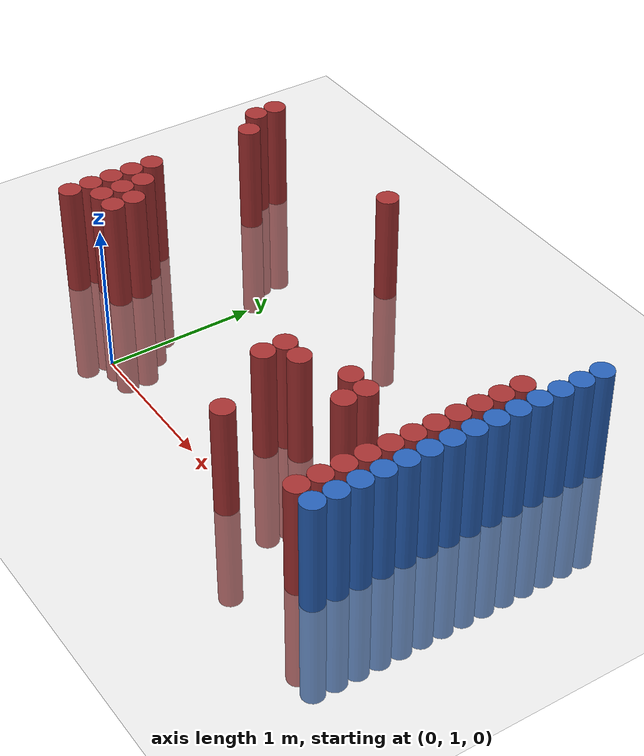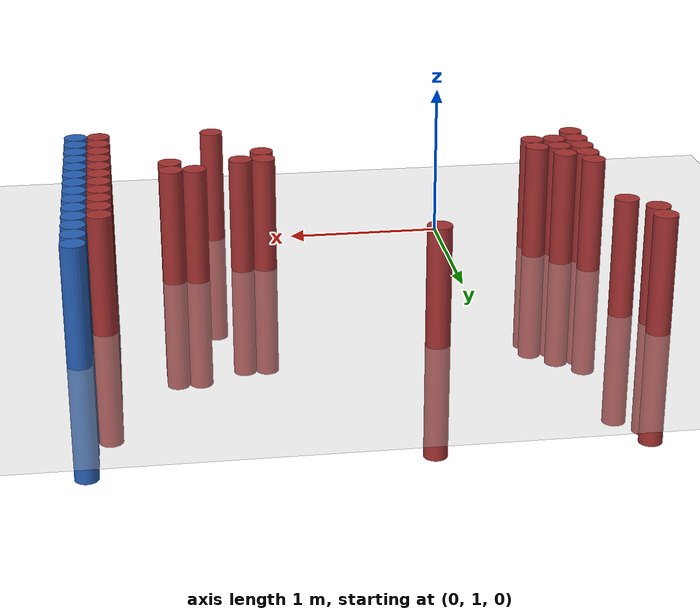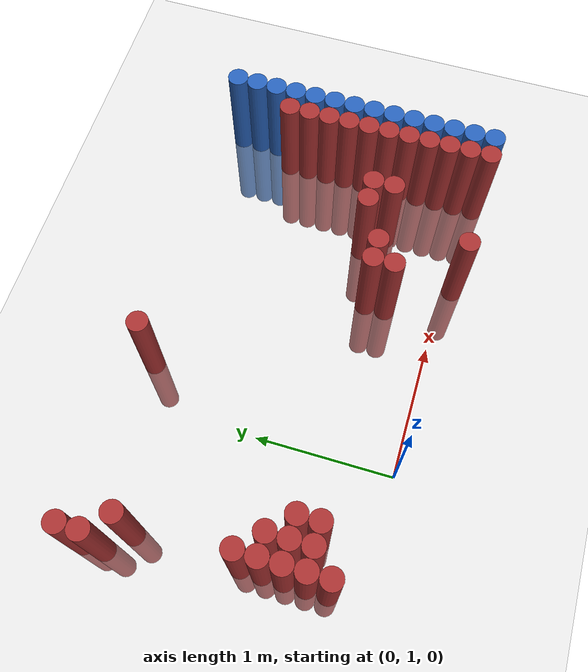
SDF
<sdf version="1.6">
 <world name="default">
  <model name="ground_plane">
   <static>1</static>
   <link name="link">
    <collision name="collision">
     <geometry><plane><normal>0 0 1</normal><size>100 100</size></plane></geometry>
     <surface><friction><ode><mu>100</mu><mu2>50</mu2></ode></friction></surface>
    </collision>
    <visual name="visual">
     <cast_shadows>0</cast_shadows>
     <geometry><plane><normal>0 0 1</normal><size>100 100</size></plane></geometry>
     <material>
      <script><uri>file://media/materials/scripts/gazebo.material</uri><name>Gazebo/Grey</name></script>
     </material>
    </visual>
   </link>
  </model>
  <model name="unit_cylinder_159">
   <static>1</static>
   <pose>-1.025000 2.725000 0.000000 0.000000 0.000000 0.000000</pose>
   <link name="link">
    <inertial>
     <mass>1</mass>
     <inertia><ixx>0.145833</ixx><ixy>0</ixy><ixz>0</ixz><iyy>0.145833</iyy><iyz>0</iyz><izz>0.125</izz></inertia>
    </inertial>
    <collision name="collision">
     <geometry><cylinder><radius>0.075000</radius><length>1.5</length></cylinder></geometry>
    </collision>
    <visual name="visual">
     <geometry><cylinder><radius>0.075000</radius><length>1.5</length></cylinder></geometry>
     <material>
      <ambient>0.648000 0.192000 0.192000 1</ambient>
      <diffuse>0.648000 0.192000 0.192000 1</diffuse>
     </material>
     <material>
      <script><name>Gazebo/Grey</name><uri>file://media/materials/scripts/gazebo.material</uri></script>
     </material>
    </visual>
   </link>
  </model>
  <model name="unit_cylinder_160">
   <static>1</static>
   <pose>-1.025000 2.875000 0.000000 0.000000 0.000000 0.000000</pose>
   <link name="link">
    <inertial>
     <mass>1</mass>
     <inertia><ixx>0.145833</ixx><ixy>0</ixy><ixz>0</ixz><iyy>0.145833</iyy><iyz>0</iyz><izz>0.125</izz></inertia>
    </inertial>
    <collision name="collision">
     <geometry><cylinder><radius>0.075000</radius><length>1.5</length></cylinder></geometry>
    </collision>
    <visual name="visual">
     <geometry><cylinder><radius>0.075000</radius><length>1.5</length></cylinder></geometry>
     <material>
      <ambient>0.648000 0.192000 0.192000 1</ambient>
      <diffuse>0.648000 0.192000 0.192000 1</diffuse>
     </material>
     <material>
      <script><name>Gazebo/Grey</name><uri>file://media/materials/scripts/gazebo.material</uri></script>
     </material>
    </visual>
   </link>
  </model>
  <model name="unit_cylinder_163">
   <static>1</static>
   <pose>-0.875000 1.225000 0.000000 0.000000 0.000000 0.000000</pose>
   <link name="link">
    <inertial>
     <mass>1</mass>
     <inertia><ixx>0.145833</ixx><ixy>0</ixy><ixz>0</ixz><iyy>0.145833</iyy><iyz>0</iyz><izz>0.125</izz></inertia>
    </inertial>
    <collision name="collision">
     <geometry><cylinder><radius>0.075000</radius><length>1.5</length></cylinder></geometry>
    </collision>
    <visual name="visual">
     <geometry><cylinder><radius>0.075000</radius><length>1.5</length></cylinder></geometry>
     <material>
      <ambient>0.648000 0.192000 0.192000 1</ambient>
      <diffuse>0.648000 0.192000 0.192000 1</diffuse>
     </material>
     <material>
      <script><name>Gazebo/Grey</name><uri>file://media/materials/scripts/gazebo.material</uri></script>
     </material>
    </visual>
   </link>
  </model>
  <model name="unit_cylinder_164">
   <static>1</static>
   <pose>-0.875000 1.375000 0.000000 0.000000 0.000000 0.000000</pose>
   <link name="link">
    <inertial>
     <mass>1</mass>
     <inertia><ixx>0.145833</ixx><ixy>0</ixy><ixz>0</ixz><iyy>0.145833</iyy><iyz>0</iyz><izz>0.125</izz></inertia>
    </inertial>
    <collision name="collision">
     <geometry><cylinder><radius>0.075000</radius><length>1.5</length></cylinder></geometry>
    </collision>
    <visual name="visual">
     <geometry><cylinder><radius>0.075000</radius><length>1.5</length></cylinder></geometry>
     <material>
      <ambient>0.648000 0.192000 0.192000 1</ambient>
      <diffuse>0.648000 0.192000 0.192000 1</diffuse>
     </material>
     <material>
      <script><name>Gazebo/Grey</name><uri>file://media/materials/scripts/gazebo.material</uri></script>
     </material>
    </visual>
   </link>
  </model>
  <model name="unit_cylinder_165">
   <static>1</static>
   <pose>-0.875000 1.525000 0.000000 0.000000 0.000000 0.000000</pose>
   <link name="link">
    <inertial>
     <mass>1</mass>
     <inertia><ixx>0.145833</ixx><ixy>0</ixy><ixz>0</ixz><iyy>0.145833</iyy><iyz>0</iyz><izz>0.125</izz></inertia>
    </inertial>
    <collision name="collision">
     <geometry><cylinder><radius>0.075000</radius><length>1.5</length></cylinder></geometry>
    </collision>
    <visual name="visual">
     <geometry><cylinder><radius>0.075000</radius><length>1.5</length></cylinder></geometry>
     <material>
      <ambient>0.648000 0.192000 0.192000 1</ambient>
      <diffuse>0.648000 0.192000 0.192000 1</diffuse>
     </material>
     <material>
      <script><name>Gazebo/Grey</name><uri>file://media/materials/scripts/gazebo.material</uri></script>
     </material>
    </visual>
   </link>
  </model>
  <model name="unit_cylinder_166">
   <static>1</static>
   <pose>-0.875000 1.675000 0.000000 0.000000 0.000000 0.000000</pose>
   <link name="link">
    <inertial>
     <mass>1</mass>
     <inertia><ixx>0.145833</ixx><ixy>0</ixy><ixz>0</ixz><iyy>0.145833</iyy><iyz>0</iyz><izz>0.125</izz></inertia>
    </inertial>
    <collision name="collision">
     <geometry><cylinder><radius>0.075000</radius><length>1.5</length></cylinder></geometry>
    </collision>
    <visual name="visual">
     <geometry><cylinder><radius>0.075000</radius><length>1.5</length></cylinder></geometry>
     <material>
      <ambient>0.648000 0.192000 0.192000 1</ambient>
      <diffuse>0.648000 0.192000 0.192000 1</diffuse>
     </material>
     <material>
      <script><name>Gazebo/Grey</name><uri>file://media/materials/scripts/gazebo.material</uri></script>
     </material>
    </visual>
   </link>
  </model>
  <model name="unit_cylinder_167">
   <static>1</static>
   <pose>-0.875000 1.825000 0.000000 0.000000 0.000000 0.000000</pose>
   <link name="link">
    <inertial>
     <mass>1</mass>
     <inertia><ixx>0.145833</ixx><ixy>0</ixy><ixz>0</ixz><iyy>0.145833</iyy><iyz>0</iyz><izz>0.125</izz></inertia>
    </inertial>
    <collision name="collision">
     <geometry><cylinder><radius>0.075000</radius><length>1.5</length></cylinder></geometry>
    </collision>
    <visual name="visual">
     <geometry><cylinder><radius>0.075000</radius><length>1.5</length></cylinder></geometry>
     <material>
      <ambient>0.648000 0.192000 0.192000 1</ambient>
      <diffuse>0.648000 0.192000 0.192000 1</diffuse>
     </material>
     <material>
      <script><name>Gazebo/Grey</name><uri>file://media/materials/scripts/gazebo.material</uri></script>
     </material>
    </visual>
   </link>
  </model>
  <model name="unit_cylinder_168">
   <static>1</static>
   <pose>-0.875000 2.575000 0.000000 0.000000 0.000000 0.000000</pose>
   <link name="link">
    <inertial>
     <mass>1</mass>
     <inertia><ixx>0.145833</ixx><ixy>0</ixy><ixz>0</ixz><iyy>0.145833</iyy><iyz>0</iyz><izz>0.125</izz></inertia>
    </inertial>
    <collision name="collision">
     <geometry><cylinder><radius>0.075000</radius><length>1.5</length></cylinder></geometry>
    </collision>
    <visual name="visual">
     <geometry><cylinder><radius>0.075000</radius><length>1.5</length></cylinder></geometry>
     <material>
      <ambient>0.648000 0.192000 0.192000 1</ambient>
      <diffuse>0.648000 0.192000 0.192000 1</diffuse>
     </material>
     <material>
      <script><name>Gazebo/Grey</name><uri>file://media/materials/scripts/gazebo.material</uri></script>
     </material>
    </visual>
   </link>
  </model>
  <model name="unit_cylinder_170">
   <static>1</static>
   <pose>-0.725000 1.375000 0.000000 0.000000 0.000000 0.000000</pose>
   <link name="link">
    <inertial>
     <mass>1</mass>
     <inertia><ixx>0.145833</ixx><ixy>0</ixy><ixz>0</ixz><iyy>0.145833</iyy><iyz>0</iyz><izz>0.125</izz></inertia>
    </inertial>
    <collision name="collision">
     <geometry><cylinder><radius>0.075000</radius><length>1.5</length></cylinder></geometry>
    </collision>
    <visual name="visual">
     <geometry><cylinder><radius>0.075000</radius><length>1.5</length></cylinder></geometry>
     <material>
      <ambient>0.648000 0.192000 0.192000 1</ambient>
      <diffuse>0.648000 0.192000 0.192000 1</diffuse>
     </material>
     <material>
      <script><name>Gazebo/Grey</name><uri>file://media/materials/scripts/gazebo.material</uri></script>
     </material>
    </visual>
   </link>
  </model>
  <model name="unit_cylinder_171">
   <static>1</static>
   <pose>-0.725000 1.525000 0.000000 0.000000 0.000000 0.000000</pose>
   <link name="link">
    <inertial>
     <mass>1</mass>
     <inertia><ixx>0.145833</ixx><ixy>0</ixy><ixz>0</ixz><iyy>0.145833</iyy><iyz>0</iyz><izz>0.125</izz></inertia>
    </inertial>
    <collision name="collision">
     <geometry><cylinder><radius>0.075000</radius><length>1.5</length></cylinder></geometry>
    </collision>
    <visual name="visual">
     <geometry><cylinder><radius>0.075000</radius><length>1.5</length></cylinder></geometry>
     <material>
      <ambient>0.648000 0.192000 0.192000 1</ambient>
      <diffuse>0.648000 0.192000 0.192000 1</diffuse>
     </material>
     <material>
      <script><name>Gazebo/Grey</name><uri>file://media/materials/scripts/gazebo.material</uri></script>
     </material>
    </visual>
   </link>
  </model>
  <model name="unit_cylinder_172">
   <static>1</static>
   <pose>-0.725000 1.675000 0.000000 0.000000 0.000000 0.000000</pose>
   <link name="link">
    <inertial>
     <mass>1</mass>
     <inertia><ixx>0.145833</ixx><ixy>0</ixy><ixz>0</ixz><iyy>0.145833</iyy><iyz>0</iyz><izz>0.125</izz></inertia>
    </inertial>
    <collision name="collision">
     <geometry><cylinder><radius>0.075000</radius><length>1.5</length></cylinder></geometry>
    </collision>
    <visual name="visual">
     <geometry><cylinder><radius>0.075000</radius><length>1.5</length></cylinder></geometry>
     <material>
      <ambient>0.648000 0.192000 0.192000 1</ambient>
      <diffuse>0.648000 0.192000 0.192000 1</diffuse>
     </material>
     <material>
      <script><name>Gazebo/Grey</name><uri>file://media/materials/scripts/gazebo.material</uri></script>
     </material>
    </visual>
   </link>
  </model>
  <model name="unit_cylinder_173">
   <static>1</static>
   <pose>-0.575000 1.375000 0.000000 0.000000 0.000000 0.000000</pose>
   <link name="link">
    <inertial>
     <mass>1</mass>
     <inertia><ixx>0.145833</ixx><ixy>0</ixy><ixz>0</ixz><iyy>0.145833</iyy><iyz>0</iyz><izz>0.125</izz></inertia>
    </inertial>
    <collision name="collision">
     <geometry><cylinder><radius>0.075000</radius><length>1.5</length></cylinder></geometry>
    </collision>
    <visual name="visual">
     <geometry><cylinder><radius>0.075000</radius><length>1.5</length></cylinder></geometry>
     <material>
      <ambient>0.648000 0.192000 0.192000 1</ambient>
      <diffuse>0.648000 0.192000 0.192000 1</diffuse>
     </material>
     <material>
      <script><name>Gazebo/Grey</name><uri>file://media/materials/scripts/gazebo.material</uri></script>
     </material>
    </visual>
   </link>
  </model>
  <model name="unit_cylinder_174">
   <static>1</static>
   <pose>-0.575000 1.525000 0.000000 0.000000 0.000000 0.000000</pose>
   <link name="link">
    <inertial>
     <mass>1</mass>
     <inertia><ixx>0.145833</ixx><ixy>0</ixy><ixz>0</ixz><iyy>0.145833</iyy><iyz>0</iyz><izz>0.125</izz></inertia>
    </inertial>
    <collision name="collision">
     <geometry><cylinder><radius>0.075000</radius><length>1.5</length></cylinder></geometry>
    </collision>
    <visual name="visual">
     <geometry><cylinder><radius>0.075000</radius><length>1.5</length></cylinder></geometry>
     <material>
      <ambient>0.648000 0.192000 0.192000 1</ambient>
      <diffuse>0.648000 0.192000 0.192000 1</diffuse>
     </material>
     <material>
      <script><name>Gazebo/Grey</name><uri>file://media/materials/scripts/gazebo.material</uri></script>
     </material>
    </visual>
   </link>
  </model>
  <model name="unit_cylinder_185">
   <static>1</static>
   <pose>0.325000 2.875000 0.000000 0.000000 0.000000 0.000000</pose>
   <link name="link">
    <inertial>
     <mass>1</mass>
     <inertia><ixx>0.145833</ixx><ixy>0</ixy><ixz>0</ixz><iyy>0.145833</iyy><iyz>0</iyz><izz>0.125</izz></inertia>
    </inertial>
    <collision name="collision">
     <geometry><cylinder><radius>0.075000</radius><length>1.5</length></cylinder></geometry>
    </collision>
    <visual name="visual">
     <geometry><cylinder><radius>0.075000</radius><length>1.5</length></cylinder></geometry>
     <material>
      <ambient>0.648000 0.192000 0.192000 1</ambient>
      <diffuse>0.648000 0.192000 0.192000 1</diffuse>
     </material>
     <material>
      <script><name>Gazebo/Grey</name><uri>file://media/materials/scripts/gazebo.material</uri></script>
     </material>
    </visual>
   </link>
  </model>
  <model name="unit_cylinder_198">
   <static>1</static>
   <pose>1.225000 1.375000 0.000000 0.000000 0.000000 0.000000</pose>
   <link name="link">
    <inertial>
     <mass>1</mass>
     <inertia><ixx>0.145833</ixx><ixy>0</ixy><ixz>0</ixz><iyy>0.145833</iyy><iyz>0</iyz><izz>0.125</izz></inertia>
    </inertial>
    <collision name="collision">
     <geometry><cylinder><radius>0.075000</radius><length>1.5</length></cylinder></geometry>
    </collision>
    <visual name="visual">
     <geometry><cylinder><radius>0.075000</radius><length>1.5</length></cylinder></geometry>
     <material>
      <ambient>0.648000 0.192000 0.192000 1</ambient>
      <diffuse>0.648000 0.192000 0.192000 1</diffuse>
     </material>
     <material>
      <script><name>Gazebo/Grey</name><uri>file://media/materials/scripts/gazebo.material</uri></script>
     </material>
    </visual>
   </link>
  </model>
  <model name="unit_cylinder_199">
   <static>1</static>
   <pose>1.225000 1.525000 0.000000 0.000000 0.000000 0.000000</pose>
   <link name="link">
    <inertial>
     <mass>1</mass>
     <inertia><ixx>0.145833</ixx><ixy>0</ixy><ixz>0</ixz><iyy>0.145833</iyy><iyz>0</iyz><izz>0.125</izz></inertia>
    </inertial>
    <collision name="collision">
     <geometry><cylinder><radius>0.075000</radius><length>1.5</length></cylinder></geometry>
    </collision>
    <visual name="visual">
     <geometry><cylinder><radius>0.075000</radius><length>1.5</length></cylinder></geometry>
     <material>
      <ambient>0.648000 0.192000 0.192000 1</ambient>
      <diffuse>0.648000 0.192000 0.192000 1</diffuse>
     </material>
     <material>
      <script><name>Gazebo/Grey</name><uri>file://media/materials/scripts/gazebo.material</uri></script>
     </material>
    </visual>
   </link>
  </model>
  <model name="unit_cylinder_201">
   <static>1</static>
   <pose>1.375000 1.525000 0.000000 0.000000 0.000000 0.000000</pose>
   <link name="link">
    <inertial>
     <mass>1</mass>
     <inertia><ixx>0.145833</ixx><ixy>0</ixy><ixz>0</ixz><iyy>0.145833</iyy><iyz>0</iyz><izz>0.125</izz></inertia>
    </inertial>
    <collision name="collision">
     <geometry><cylinder><radius>0.075000</radius><length>1.5</length></cylinder></geometry>
    </collision>
    <visual name="visual">
     <geometry><cylinder><radius>0.075000</radius><length>1.5</length></cylinder></geometry>
     <material>
      <ambient>0.648000 0.192000 0.192000 1</ambient>
      <diffuse>0.648000 0.192000 0.192000 1</diffuse>
     </material>
     <material>
      <script><name>Gazebo/Grey</name><uri>file://media/materials/scripts/gazebo.material</uri></script>
     </material>
    </visual>
   </link>
  </model>
  <model name="unit_cylinder_204">
   <static>1</static>
   <pose>1.525000 0.925000 0.000000 0.000000 0.000000 0.000000</pose>
   <link name="link">
    <inertial>
     <mass>1</mass>
     <inertia><ixx>0.145833</ixx><ixy>0</ixy><ixz>0</ixz><iyy>0.145833</iyy><iyz>0</iyz><izz>0.125</izz></inertia>
    </inertial>
    <collision name="collision">
     <geometry><cylinder><radius>0.075000</radius><length>1.5</length></cylinder></geometry>
    </collision>
    <visual name="visual">
     <geometry><cylinder><radius>0.075000</radius><length>1.5</length></cylinder></geometry>
     <material>
      <ambient>0.648000 0.192000 0.192000 1</ambient>
      <diffuse>0.648000 0.192000 0.192000 1</diffuse>
     </material>
     <material>
      <script><name>Gazebo/Grey</name><uri>file://media/materials/scripts/gazebo.material</uri></script>
     </material>
    </visual>
   </link>
  </model>
  <model name="unit_cylinder_210">
   <static>1</static>
   <pose>1.675000 1.675000 0.000000 0.000000 0.000000 0.000000</pose>
   <link name="link">
    <inertial>
     <mass>1</mass>
     <inertia><ixx>0.145833</ixx><ixy>0</ixy><ixz>0</ixz><iyy>0.145833</iyy><iyz>0</iyz><izz>0.125</izz></inertia>
    </inertial>
    <collision name="collision">
     <geometry><cylinder><radius>0.075000</radius><length>1.5</length></cylinder></geometry>
    </collision>
    <visual name="visual">
     <geometry><cylinder><radius>0.075000</radius><length>1.5</length></cylinder></geometry>
     <material>
      <ambient>0.648000 0.192000 0.192000 1</ambient>
      <diffuse>0.648000 0.192000 0.192000 1</diffuse>
     </material>
     <material>
      <script><name>Gazebo/Grey</name><uri>file://media/materials/scripts/gazebo.material</uri></script>
     </material>
    </visual>
   </link>
  </model>
  <model name="unit_cylinder_215">
   <static>1</static>
   <pose>1.825000 1.525000 0.000000 0.000000 0.000000 0.000000</pose>
   <link name="link">
    <inertial>
     <mass>1</mass>
     <inertia><ixx>0.145833</ixx><ixy>0</ixy><ixz>0</ixz><iyy>0.145833</iyy><iyz>0</iyz><izz>0.125</izz></inertia>
    </inertial>
    <collision name="collision">
     <geometry><cylinder><radius>0.075000</radius><length>1.5</length></cylinder></geometry>
    </collision>
    <visual name="visual">
     <geometry><cylinder><radius>0.075000</radius><length>1.5</length></cylinder></geometry>
     <material>
      <ambient>0.648000 0.192000 0.192000 1</ambient>
      <diffuse>0.648000 0.192000 0.192000 1</diffuse>
     </material>
     <material>
      <script><name>Gazebo/Grey</name><uri>file://media/materials/scripts/gazebo.material</uri></script>
     </material>
    </visual>
   </link>
  </model>
  <model name="unit_cylinder_216">
   <static>1</static>
   <pose>1.825000 1.675000 0.000000 0.000000 0.000000 0.000000</pose>
   <link name="link">
    <inertial>
     <mass>1</mass>
     <inertia><ixx>0.145833</ixx><ixy>0</ixy><ixz>0</ixz><iyy>0.145833</iyy><iyz>0</iyz><izz>0.125</izz></inertia>
    </inertial>
    <collision name="collision">
     <geometry><cylinder><radius>0.075000</radius><length>1.5</length></cylinder></geometry>
    </collision>
    <visual name="visual">
     <geometry><cylinder><radius>0.075000</radius><length>1.5</length></cylinder></geometry>
     <material>
      <ambient>0.648000 0.192000 0.192000 1</ambient>
      <diffuse>0.648000 0.192000 0.192000 1</diffuse>
     </material>
     <material>
      <script><name>Gazebo/Grey</name><uri>file://media/materials/scripts/gazebo.material</uri></script>
     </material>
    </visual>
   </link>
  </model>
  <model name="unit_cylinder_233">
   <static>1</static>
   <pose>2.275000 0.925000 0.000000 0.000000 0.000000 0.000000</pose>
   <link name="link">
    <inertial>
     <mass>1</mass>
     <inertia><ixx>0.145833</ixx><ixy>0</ixy><ixz>0</ixz><iyy>0.145833</iyy><iyz>0</iyz><izz>0.125</izz></inertia>
    </inertial>
    <collision name="collision">
     <geometry><cylinder><radius>0.075000</radius><length>1.5</length></cylinder></geometry>
    </collision>
    <visual name="visual">
     <geometry><cylinder><radius>0.075000</radius><length>1.5</length></cylinder></geometry>
     <material>
      <ambient>0.648000 0.192000 0.192000 1</ambient>
      <diffuse>0.648000 0.192000 0.192000 1</diffuse>
     </material>
     <material>
      <script><name>Gazebo/Grey</name><uri>file://media/materials/scripts/gazebo.material</uri></script>
     </material>
    </visual>
   </link>
  </model>
  <model name="unit_cylinder_234">
   <static>1</static>
   <pose>2.275000 1.075000 0.000000 0.000000 0.000000 0.000000</pose>
   <link name="link">
    <inertial>
     <mass>1</mass>
     <inertia><ixx>0.145833</ixx><ixy>0</ixy><ixz>0</ixz><iyy>0.145833</iyy><iyz>0</iyz><izz>0.125</izz></inertia>
    </inertial>
    <collision name="collision">
     <geometry><cylinder><radius>0.075000</radius><length>1.5</length></cylinder></geometry>
    </collision>
    <visual name="visual">
     <geometry><cylinder><radius>0.075000</radius><length>1.5</length></cylinder></geometry>
     <material>
      <ambient>0.648000 0.192000 0.192000 1</ambient>
      <diffuse>0.648000 0.192000 0.192000 1</diffuse>
     </material>
     <material>
      <script><name>Gazebo/Grey</name><uri>file://media/materials/scripts/gazebo.material</uri></script>
     </material>
    </visual>
   </link>
  </model>
  <model name="unit_cylinder_235">
   <static>1</static>
   <pose>2.275000 1.225000 0.000000 0.000000 0.000000 0.000000</pose>
   <link name="link">
    <inertial>
     <mass>1</mass>
     <inertia><ixx>0.145833</ixx><ixy>0</ixy><ixz>0</ixz><iyy>0.145833</iyy><iyz>0</iyz><izz>0.125</izz></inertia>
    </inertial>
    <collision name="collision">
     <geometry><cylinder><radius>0.075000</radius><length>1.5</length></cylinder></geometry>
    </collision>
    <visual name="visual">
     <geometry><cylinder><radius>0.075000</radius><length>1.5</length></cylinder></geometry>
     <material>
      <ambient>0.648000 0.192000 0.192000 1</ambient>
      <diffuse>0.648000 0.192000 0.192000 1</diffuse>
     </material>
     <material>
      <script><name>Gazebo/Grey</name><uri>file://media/materials/scripts/gazebo.material</uri></script>
     </material>
    </visual>
   </link>
  </model>
  <model name="unit_cylinder_236">
   <static>1</static>
   <pose>2.275000 1.375000 0.000000 0.000000 0.000000 0.000000</pose>
   <link name="link">
    <inertial>
     <mass>1</mass>
     <inertia><ixx>0.145833</ixx><ixy>0</ixy><ixz>0</ixz><iyy>0.145833</iyy><iyz>0</iyz><izz>0.125</izz></inertia>
    </inertial>
    <collision name="collision">
     <geometry><cylinder><radius>0.075000</radius><length>1.5</length></cylinder></geometry>
    </collision>
    <visual name="visual">
     <geometry><cylinder><radius>0.075000</radius><length>1.5</length></cylinder></geometry>
     <material>
      <ambient>0.648000 0.192000 0.192000 1</ambient>
      <diffuse>0.648000 0.192000 0.192000 1</diffuse>
     </material>
     <material>
      <script><name>Gazebo/Grey</name><uri>file://media/materials/scripts/gazebo.material</uri></script>
     </material>
    </visual>
   </link>
  </model>
  <model name="unit_cylinder_237">
   <static>1</static>
   <pose>2.275000 1.525000 0.000000 0.000000 0.000000 0.000000</pose>
   <link name="link">
    <inertial>
     <mass>1</mass>
     <inertia><ixx>0.145833</ixx><ixy>0</ixy><ixz>0</ixz><iyy>0.145833</iyy><iyz>0</iyz><izz>0.125</izz></inertia>
    </inertial>
    <collision name="collision">
     <geometry><cylinder><radius>0.075000</radius><length>1.5</length></cylinder></geometry>
    </collision>
    <visual name="visual">
     <geometry><cylinder><radius>0.075000</radius><length>1.5</length></cylinder></geometry>
     <material>
      <ambient>0.648000 0.192000 0.192000 1</ambient>
      <diffuse>0.648000 0.192000 0.192000 1</diffuse>
     </material>
     <material>
      <script><name>Gazebo/Grey</name><uri>file://media/materials/scripts/gazebo.material</uri></script>
     </material>
    </visual>
   </link>
  </model>
  <model name="unit_cylinder_238">
   <static>1</static>
   <pose>2.275000 1.675000 0.000000 0.000000 0.000000 0.000000</pose>
   <link name="link">
    <inertial>
     <mass>1</mass>
     <inertia><ixx>0.145833</ixx><ixy>0</ixy><ixz>0</ixz><iyy>0.145833</iyy><iyz>0</iyz><izz>0.125</izz></inertia>
    </inertial>
    <collision name="collision">
     <geometry><cylinder><radius>0.075000</radius><length>1.5</length></cylinder></geometry>
    </collision>
    <visual name="visual">
     <geometry><cylinder><radius>0.075000</radius><length>1.5</length></cylinder></geometry>
     <material>
      <ambient>0.648000 0.192000 0.192000 1</ambient>
      <diffuse>0.648000 0.192000 0.192000 1</diffuse>
     </material>
     <material>
      <script><name>Gazebo/Grey</name><uri>file://media/materials/scripts/gazebo.material</uri></script>
     </material>
    </visual>
   </link>
  </model>
  <model name="unit_cylinder_239">
   <static>1</static>
   <pose>2.275000 1.825000 0.000000 0.000000 0.000000 0.000000</pose>
   <link name="link">
    <inertial>
     <mass>1</mass>
     <inertia><ixx>0.145833</ixx><ixy>0</ixy><ixz>0</ixz><iyy>0.145833</iyy><iyz>0</iyz><izz>0.125</izz></inertia>
    </inertial>
    <collision name="collision">
     <geometry><cylinder><radius>0.075000</radius><length>1.5</length></cylinder></geometry>
    </collision>
    <visual name="visual">
     <geometry><cylinder><radius>0.075000</radius><length>1.5</length></cylinder></geometry>
     <material>
      <ambient>0.648000 0.192000 0.192000 1</ambient>
      <diffuse>0.648000 0.192000 0.192000 1</diffuse>
     </material>
     <material>
      <script><name>Gazebo/Grey</name><uri>file://media/materials/scripts/gazebo.material</uri></script>
     </material>
    </visual>
   </link>
  </model>
  <model name="unit_cylinder_240">
   <static>1</static>
   <pose>2.275000 1.975000 0.000000 0.000000 0.000000 0.000000</pose>
   <link name="link">
    <inertial>
     <mass>1</mass>
     <inertia><ixx>0.145833</ixx><ixy>0</ixy><ixz>0</ixz><iyy>0.145833</iyy><iyz>0</iyz><izz>0.125</izz></inertia>
    </inertial>
    <collision name="collision">
     <geometry><cylinder><radius>0.075000</radius><length>1.5</length></cylinder></geometry>
    </collision>
    <visual name="visual">
     <geometry><cylinder><radius>0.075000</radius><length>1.5</length></cylinder></geometry>
     <material>
      <ambient>0.648000 0.192000 0.192000 1</ambient>
      <diffuse>0.648000 0.192000 0.192000 1</diffuse>
     </material>
     <material>
      <script><name>Gazebo/Grey</name><uri>file://media/materials/scripts/gazebo.material</uri></script>
     </material>
    </visual>
   </link>
  </model>
  <model name="unit_cylinder_241">
   <static>1</static>
   <pose>2.275000 2.125000 0.000000 0.000000 0.000000 0.000000</pose>
   <link name="link">
    <inertial>
     <mass>1</mass>
     <inertia><ixx>0.145833</ixx><ixy>0</ixy><ixz>0</ixz><iyy>0.145833</iyy><iyz>0</iyz><izz>0.125</izz></inertia>
    </inertial>
    <collision name="collision">
     <geometry><cylinder><radius>0.075000</radius><length>1.5</length></cylinder></geometry>
    </collision>
    <visual name="visual">
     <geometry><cylinder><radius>0.075000</radius><length>1.5</length></cylinder></geometry>
     <material>
      <ambient>0.648000 0.192000 0.192000 1</ambient>
      <diffuse>0.648000 0.192000 0.192000 1</diffuse>
     </material>
     <material>
      <script><name>Gazebo/Grey</name><uri>file://media/materials/scripts/gazebo.material</uri></script>
     </material>
    </visual>
   </link>
  </model>
  <model name="unit_cylinder_242">
   <static>1</static>
   <pose>2.275000 2.275000 0.000000 0.000000 0.000000 0.000000</pose>
   <link name="link">
    <inertial>
     <mass>1</mass>
     <inertia><ixx>0.145833</ixx><ixy>0</ixy><ixz>0</ixz><iyy>0.145833</iyy><iyz>0</iyz><izz>0.125</izz></inertia>
    </inertial>
    <collision name="collision">
     <geometry><cylinder><radius>0.075000</radius><length>1.5</length></cylinder></geometry>
    </collision>
    <visual name="visual">
     <geometry><cylinder><radius>0.075000</radius><length>1.5</length></cylinder></geometry>
     <material>
      <ambient>0.648000 0.192000 0.192000 1</ambient>
      <diffuse>0.648000 0.192000 0.192000 1</diffuse>
     </material>
     <material>
      <script><name>Gazebo/Grey</name><uri>file://media/materials/scripts/gazebo.material</uri></script>
     </material>
    </visual>
   </link>
  </model>
  <model name="unit_cylinder_243">
   <static>1</static>
   <pose>2.275000 2.425000 0.000000 0.000000 0.000000 0.000000</pose>
   <link name="link">
    <inertial>
     <mass>1</mass>
     <inertia><ixx>0.145833</ixx><ixy>0</ixy><ixz>0</ixz><iyy>0.145833</iyy><iyz>0</iyz><izz>0.125</izz></inertia>
    </inertial>
    <collision name="collision">
     <geometry><cylinder><radius>0.075000</radius><length>1.5</length></cylinder></geometry>
    </collision>
    <visual name="visual">
     <geometry><cylinder><radius>0.075000</radius><length>1.5</length></cylinder></geometry>
     <material>
      <ambient>0.648000 0.192000 0.192000 1</ambient>
      <diffuse>0.648000 0.192000 0.192000 1</diffuse>
     </material>
     <material>
      <script><name>Gazebo/Grey</name><uri>file://media/materials/scripts/gazebo.material</uri></script>
     </material>
    </visual>
   </link>
  </model>
  <model name="unit_cylinder_256">
   <static>1</static>
   <pose>2.425000 0.925000 0.000000 0.000000 0.000000 0.000000</pose>
   <link name="link">
    <inertial>
     <mass>1</mass>
     <inertia><ixx>0.145833</ixx><ixy>0</ixy><ixz>0</ixz><iyy>0.145833</iyy><iyz>0</iyz><izz>0.125</izz></inertia>
    </inertial>
    <collision name="collision">
     <geometry><cylinder><radius>0.075000</radius><length>1.5</length></cylinder></geometry>
    </collision>
    <visual name="visual">
     <geometry><cylinder><radius>0.075000</radius><length>1.5</length></cylinder></geometry>
     <material>
      <ambient>0.152000 0.379000 0.720000 1</ambient>
      <diffuse>0.152000 0.379000 0.720000 1</diffuse>
     </material>
     <material>
      <script><name>Gazebo/Grey</name><uri>file://media/materials/scripts/gazebo.material</uri></script>
     </material>
    </visual>
   </link>
  </model>
  <model name="unit_cylinder_257">
   <static>1</static>
   <pose>2.425000 1.075000 0.000000 0.000000 0.000000 0.000000</pose>
   <link name="link">
    <inertial>
     <mass>1</mass>
     <inertia><ixx>0.145833</ixx><ixy>0</ixy><ixz>0</ixz><iyy>0.145833</iyy><iyz>0</iyz><izz>0.125</izz></inertia>
    </inertial>
    <collision name="collision">
     <geometry><cylinder><radius>0.075000</radius><length>1.5</length></cylinder></geometry>
    </collision>
    <visual name="visual">
     <geometry><cylinder><radius>0.075000</radius><length>1.5</length></cylinder></geometry>
     <material>
      <ambient>0.152000 0.379000 0.720000 1</ambient>
      <diffuse>0.152000 0.379000 0.720000 1</diffuse>
     </material>
     <material>
      <script><name>Gazebo/Grey</name><uri>file://media/materials/scripts/gazebo.material</uri></script>
     </material>
    </visual>
   </link>
  </model>
  <model name="unit_cylinder_258">
   <static>1</static>
   <pose>2.425000 1.225000 0.000000 0.000000 0.000000 0.000000</pose>
   <link name="link">
    <inertial>
     <mass>1</mass>
     <inertia><ixx>0.145833</ixx><ixy>0</ixy><ixz>0</ixz><iyy>0.145833</iyy><iyz>0</iyz><izz>0.125</izz></inertia>
    </inertial>
    <collision name="collision">
     <geometry><cylinder><radius>0.075000</radius><length>1.5</length></cylinder></geometry>
    </collision>
    <visual name="visual">
     <geometry><cylinder><radius>0.075000</radius><length>1.5</length></cylinder></geometry>
     <material>
      <ambient>0.152000 0.379000 0.720000 1</ambient>
      <diffuse>0.152000 0.379000 0.720000 1</diffuse>
     </material>
     <material>
      <script><name>Gazebo/Grey</name><uri>file://media/materials/scripts/gazebo.material</uri></script>
     </material>
    </visual>
   </link>
  </model>
  <model name="unit_cylinder_259">
   <static>1</static>
   <pose>2.425000 1.375000 0.000000 0.000000 0.000000 0.000000</pose>
   <link name="link">
    <inertial>
     <mass>1</mass>
     <inertia><ixx>0.145833</ixx><ixy>0</ixy><ixz>0</ixz><iyy>0.145833</iyy><iyz>0</iyz><izz>0.125</izz></inertia>
    </inertial>
    <collision name="collision">
     <geometry><cylinder><radius>0.075000</radius><length>1.5</length></cylinder></geometry>
    </collision>
    <visual name="visual">
     <geometry><cylinder><radius>0.075000</radius><length>1.5</length></cylinder></geometry>
     <material>
      <ambient>0.152000 0.379000 0.720000 1</ambient>
      <diffuse>0.152000 0.379000 0.720000 1</diffuse>
     </material>
     <material>
      <script><name>Gazebo/Grey</name><uri>file://media/materials/scripts/gazebo.material</uri></script>
     </material>
    </visual>
   </link>
  </model>
  <model name="unit_cylinder_260">
   <static>1</static>
   <pose>2.425000 1.525000 0.000000 0.000000 0.000000 0.000000</pose>
   <link name="link">
    <inertial>
     <mass>1</mass>
     <inertia><ixx>0.145833</ixx><ixy>0</ixy><ixz>0</ixz><iyy>0.145833</iyy><iyz>0</iyz><izz>0.125</izz></inertia>
    </inertial>
    <collision name="collision">
     <geometry><cylinder><radius>0.075000</radius><length>1.5</length></cylinder></geometry>
    </collision>
    <visual name="visual">
     <geometry><cylinder><radius>0.075000</radius><length>1.5</length></cylinder></geometry>
     <material>
      <ambient>0.152000 0.379000 0.720000 1</ambient>
      <diffuse>0.152000 0.379000 0.720000 1</diffuse>
     </material>
     <material>
      <script><name>Gazebo/Grey</name><uri>file://media/materials/scripts/gazebo.material</uri></script>
     </material>
    </visual>
   </link>
  </model>
  <model name="unit_cylinder_261">
   <static>1</static>
   <pose>2.425000 1.675000 0.000000 0.000000 0.000000 0.000000</pose>
   <link name="link">
    <inertial>
     <mass>1</mass>
     <inertia><ixx>0.145833</ixx><ixy>0</ixy><ixz>0</ixz><iyy>0.145833</iyy><iyz>0</iyz><izz>0.125</izz></inertia>
    </inertial>
    <collision name="collision">
     <geometry><cylinder><radius>0.075000</radius><length>1.5</length></cylinder></geometry>
    </collision>
    <visual name="visual">
     <geometry><cylinder><radius>0.075000</radius><length>1.5</length></cylinder></geometry>
     <material>
      <ambient>0.152000 0.379000 0.720000 1</ambient>
      <diffuse>0.152000 0.379000 0.720000 1</diffuse>
     </material>
     <material>
      <script><name>Gazebo/Grey</name><uri>file://media/materials/scripts/gazebo.material</uri></script>
     </material>
    </visual>
   </link>
  </model>
  <model name="unit_cylinder_262">
   <static>1</static>
   <pose>2.425000 1.825000 0.000000 0.000000 0.000000 0.000000</pose>
   <link name="link">
    <inertial>
     <mass>1</mass>
     <inertia><ixx>0.145833</ixx><ixy>0</ixy><ixz>0</ixz><iyy>0.145833</iyy><iyz>0</iyz><izz>0.125</izz></inertia>
    </inertial>
    <collision name="collision">
     <geometry><cylinder><radius>0.075000</radius><length>1.5</length></cylinder></geometry>
    </collision>
    <visual name="visual">
     <geometry><cylinder><radius>0.075000</radius><length>1.5</length></cylinder></geometry>
     <material>
      <ambient>0.152000 0.379000 0.720000 1</ambient>
      <diffuse>0.152000 0.379000 0.720000 1</diffuse>
     </material>
     <material>
      <script><name>Gazebo/Grey</name><uri>file://media/materials/scripts/gazebo.material</uri></script>
     </material>
    </visual>
   </link>
  </model>
  <model name="unit_cylinder_263">
   <static>1</static>
   <pose>2.425000 1.975000 0.000000 0.000000 0.000000 0.000000</pose>
   <link name="link">
    <inertial>
     <mass>1</mass>
     <inertia><ixx>0.145833</ixx><ixy>0</ixy><ixz>0</ixz><iyy>0.145833</iyy><iyz>0</iyz><izz>0.125</izz></inertia>
    </inertial>
    <collision name="collision">
     <geometry><cylinder><radius>0.075000</radius><length>1.5</length></cylinder></geometry>
    </collision>
    <visual name="visual">
     <geometry><cylinder><radius>0.075000</radius><length>1.5</length></cylinder></geometry>
     <material>
      <ambient>0.152000 0.379000 0.720000 1</ambient>
      <diffuse>0.152000 0.379000 0.720000 1</diffuse>
     </material>
     <material>
      <script><name>Gazebo/Grey</name><uri>file://media/materials/scripts/gazebo.material</uri></script>
     </material>
    </visual>
   </link>
  </model>
  <model name="unit_cylinder_264">
   <static>1</static>
   <pose>2.425000 2.125000 0.000000 0.000000 0.000000 0.000000</pose>
   <link name="link">
    <inertial>
     <mass>1</mass>
     <inertia><ixx>0.145833</ixx><ixy>0</ixy><ixz>0</ixz><iyy>0.145833</iyy><iyz>0</iyz><izz>0.125</izz></inertia>
    </inertial>
    <collision name="collision">
     <geometry><cylinder><radius>0.075000</radius><length>1.5</length></cylinder></geometry>
    </collision>
    <visual name="visual">
     <geometry><cylinder><radius>0.075000</radius><length>1.5</length></cylinder></geometry>
     <material>
      <ambient>0.152000 0.379000 0.720000 1</ambient>
      <diffuse>0.152000 0.379000 0.720000 1</diffuse>
     </material>
     <material>
      <script><name>Gazebo/Grey</name><uri>file://media/materials/scripts/gazebo.material</uri></script>
     </material>
    </visual>
   </link>
  </model>
  <model name="unit_cylinder_265">
   <static>1</static>
   <pose>2.425000 2.275000 0.000000 0.000000 0.000000 0.000000</pose>
   <link name="link">
    <inertial>
     <mass>1</mass>
     <inertia><ixx>0.145833</ixx><ixy>0</ixy><ixz>0</ixz><iyy>0.145833</iyy><iyz>0</iyz><izz>0.125</izz></inertia>
    </inertial>
    <collision name="collision">
     <geometry><cylinder><radius>0.075000</radius><length>1.5</length></cylinder></geometry>
    </collision>
    <visual name="visual">
     <geometry><cylinder><radius>0.075000</radius><length>1.5</length></cylinder></geometry>
     <material>
      <ambient>0.152000 0.379000 0.720000 1</ambient>
      <diffuse>0.152000 0.379000 0.720000 1</diffuse>
     </material>
     <material>
      <script><name>Gazebo/Grey</name><uri>file://media/materials/scripts/gazebo.material</uri></script>
     </material>
    </visual>
   </link>
  </model>
  <model name="unit_cylinder_266">
   <static>1</static>
   <pose>2.425000 2.425000 0.000000 0.000000 0.000000 0.000000</pose>
   <link name="link">
    <inertial>
     <mass>1</mass>
     <inertia><ixx>0.145833</ixx><ixy>0</ixy><ixz>0</ixz><iyy>0.145833</iyy><iyz>0</iyz><izz>0.125</izz></inertia>
    </inertial>
    <collision name="collision">
     <geometry><cylinder><radius>0.075000</radius><length>1.5</length></cylinder></geometry>
    </collision>
    <visual name="visual">
     <geometry><cylinder><radius>0.075000</radius><length>1.5</length></cylinder></geometry>
     <material>
      <ambient>0.152000 0.379000 0.720000 1</ambient>
      <diffuse>0.152000 0.379000 0.720000 1</diffuse>
     </material>
     <material>
      <script><name>Gazebo/Grey</name><uri>file://media/materials/scripts/gazebo.material</uri></script>
     </material>
    </visual>
   </link>
  </model>
  <model name="unit_cylinder_267">
   <static>1</static>
   <pose>2.425000 2.575000 0.000000 0.000000 0.000000 0.000000</pose>
   <link name="link">
    <inertial>
     <mass>1</mass>
     <inertia><ixx>0.145833</ixx><ixy>0</ixy><ixz>0</ixz><iyy>0.145833</iyy><iyz>0</iyz><izz>0.125</izz></inertia>
    </inertial>
    <collision name="collision">
     <geometry><cylinder><radius>0.075000</radius><length>1.5</length></cylinder></geometry>
    </collision>
    <visual name="visual">
     <geometry><cylinder><radius>0.075000</radius><length>1.5</length></cylinder></geometry>
     <material>
      <ambient>0.152000 0.379000 0.720000 1</ambient>
      <diffuse>0.152000 0.379000 0.720000 1</diffuse>
     </material>
     <material>
      <script><name>Gazebo/Grey</name><uri>file://media/materials/scripts/gazebo.material</uri></script>
     </material>
    </visual>
   </link>
  </model>
  <model name="unit_cylinder_268">
   <static>1</static>
   <pose>2.425000 2.725000 0.000000 0.000000 0.000000 0.000000</pose>
   <link name="link">
    <inertial>
     <mass>1</mass>
     <inertia><ixx>0.145833</ixx><ixy>0</ixy><ixz>0</ixz><iyy>0.145833</iyy><iyz>0</iyz><izz>0.125</izz></inertia>
    </inertial>
    <collision name="collision">
     <geometry><cylinder><radius>0.075000</radius><length>1.5</length></cylinder></geometry>
    </collision>
    <visual name="visual">
     <geometry><cylinder><radius>0.075000</radius><length>1.5</length></cylinder></geometry>
     <material>
      <ambient>0.152000 0.379000 0.720000 1</ambient>
      <diffuse>0.152000 0.379000 0.720000 1</diffuse>
     </material>
     <material>
      <script><name>Gazebo/Grey</name><uri>file://media/materials/scripts/gazebo.material</uri></script>
     </material>
    </visual>
   </link>
  </model>
  <model name="unit_cylinder_269">
   <static>1</static>
   <pose>2.425000 2.875000 0.000000 0.000000 0.000000 0.000000</pose>
   <link name="link">
    <inertial>
     <mass>1</mass>
     <inertia><ixx>0.145833</ixx><ixy>0</ixy><ixz>0</ixz><iyy>0.145833</iyy><iyz>0</iyz><izz>0.125</izz></inertia>
    </inertial>
    <collision name="collision">
     <geometry><cylinder><radius>0.075000</radius><length>1.5</length></cylinder></geometry>
    </collision>
    <visual name="visual">
     <geometry><cylinder><radius>0.075000</radius><length>1.5</length></cylinder></geometry>
     <material>
      <ambient>0.152000 0.379000 0.720000 1</ambient>
      <diffuse>0.152000 0.379000 0.720000 1</diffuse>
     </material>
     <material>
      <script><name>Gazebo/Grey</name><uri>file://media/materials/scripts/gazebo.material</uri></script>
     </material>
    </visual>
   </link>
  </model>
 </world>
</sdf>
